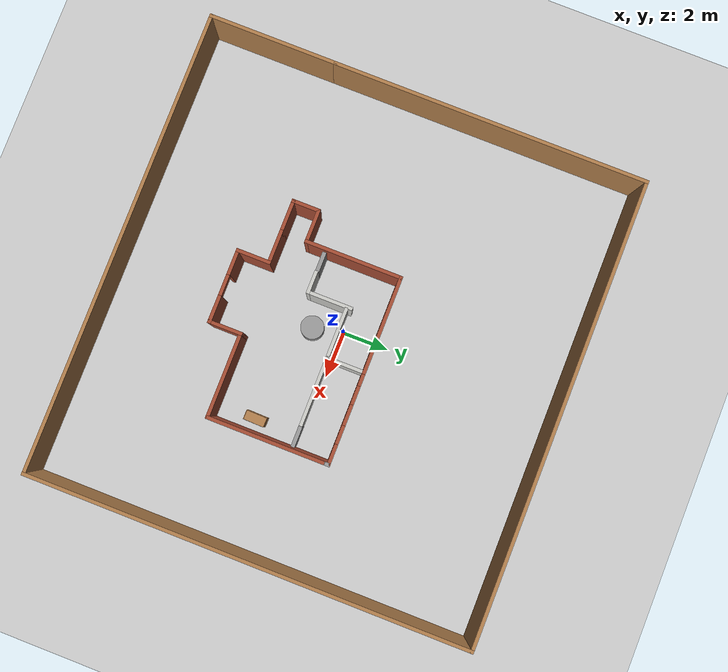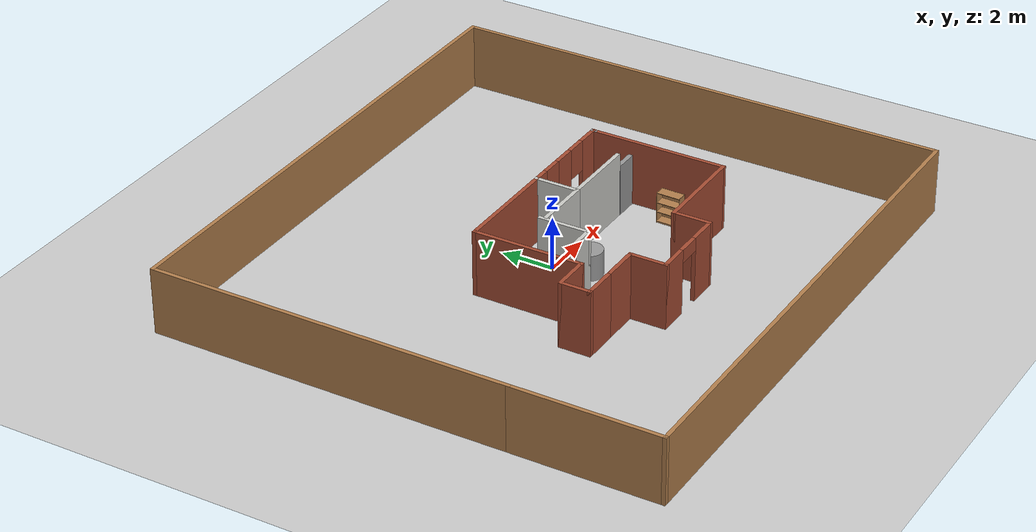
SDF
<sdf version="1.7">
 <world name="world">
  <light name="sun" type="directional">
   <pose>0 0 10 0 -0 0</pose>
   <diffuse>0.8 0.8 0.8 1</diffuse>
   <specular>0.2 0.2 0.2 1</specular>
   <attenuation>
    <range>1000</range>
    <constant>0.9</constant>
    <linear>0.01</linear>
    <quadratic>0.001</quadratic>
   </attenuation>
   <direction>-0.5 0.1 -0.9</direction>
   <spot><inner_angle>0</inner_angle><outer_angle>0</outer_angle><falloff>0</falloff></spot>
  </light>
  <model name="ground_plane">
   <static>1</static>
   <link name="link">
    <collision name="collision">
     <geometry><plane><normal>0 0 1</normal><size>100 100</size></plane></geometry>
     <surface>
      <contact><collide_bitmask>65535</collide_bitmask></contact>
      <friction><ode><mu>100</mu><mu2>50</mu2></ode></friction>
     </surface>
    </collision>
    <visual name="visual">
     <cast_shadows>0</cast_shadows>
     <geometry><plane><normal>0 0 1</normal><size>100 100</size></plane></geometry>
     <material>
      <script><uri>file://media/materials/scripts/gazebo.material</uri><name>Gazebo/Grey</name></script>
     </material>
    </visual>
   </link>
  </model>
  <gravity>0 0 -9.8</gravity>
  <magnetic_field>6e-06 2.3e-05 -4.2e-05</magnetic_field>
  <atmosphere type="adiabatic"/>
  <physics type="ode">
   <max_step_size>0.001</max_step_size>
   <real_time_factor>1</real_time_factor>
   <real_time_update_rate>1000</real_time_update_rate>
  </physics>
  <scene><ambient>0.4 0.4 0.4 1</ambient><background>0.7 0.7 0.7 1</background><shadows>1</shadows></scene>
  <spherical_coordinates>
   <surface_model>EARTH_WGS84</surface_model>
   <latitude_deg>0</latitude_deg>
   <longitude_deg>0</longitude_deg>
   <elevation>0</elevation>
   <heading_deg>0</heading_deg>
  </spherical_coordinates>
  <model name="my_world.world">
   <pose>0.6084 -1.8556 0 0 -0 0</pose>
   <link name="Door_1">
    <collision name="Door_1_Collision">
     <geometry><box><size>0.9 0.17 2</size></box></geometry>
     <pose>0 0 1 0 -0 0</pose>
    </collision>
    <visual name="Door_1_Visual">
     <pose>0 0 1 0 -0 0</pose>
     <geometry><box><size>0.9 0.17 2</size></box></geometry>
     <material>
      <script><uri>file://media/materials/scripts/gazebo.material</uri><name>Gazebo/Grey</name></script>
     </material>
    </visual>
    <pose>4.14027 1.67101 0 0 -0 0</pose>
   </link>
   <link name="Door_5">
    <collision name="Door_5_Collision">
     <geometry><box><size>0.9 0.17 2</size></box></geometry>
     <pose>0 0 1 0 -0 0</pose>
    </collision>
    <visual name="Door_5_Visual">
     <pose>0 0 1 0 -0 0</pose>
     <geometry><box><size>0.9 0.17 2</size></box></geometry>
     <material>
      <script><uri>file://media/materials/scripts/gazebo.material</uri><name>Gazebo/Grey</name></script>
     </material>
    </visual>
    <pose>-2.84578 -0.011754 0 0 -0 0</pose>
   </link>
   <link name="Wall_38">
    <collision name="Wall_38_Collision">
     <geometry><box><size>4.25 0.15 2.5</size></box></geometry>
     <pose>0 0 1.25 0 -0 0</pose>
    </collision>
    <visual name="Wall_38_Visual">
     <pose>0 0 1.25 0 -0 0</pose>
     <geometry><box><size>4.25 0.15 2.5</size></box></geometry>
     <material>
      <script><uri>file://media/materials/scripts/gazebo.material</uri><name>Gazebo/Bricks</name></script>
      <ambient>1 1 1 1</ambient>
     </material>
     <meta><layer>0</layer></meta>
    </visual>
    <pose>-1.3 3.275 0 0 -0 3.14159</pose>
   </link>
   <link name="Wall_39">
    <collision name="Wall_39_Collision">
     <geometry><box><size>4.25 0.15 2.5</size></box></geometry>
     <pose>0 0 1.25 0 -0 0</pose>
    </collision>
    <visual name="Wall_39_Visual">
     <pose>0 0 1.25 0 -0 0</pose>
     <geometry><box><size>4.25 0.15 2.5</size></box></geometry>
     <material>
      <script><uri>file://media/materials/scripts/gazebo.material</uri><name>Gazebo/Bricks</name></script>
      <ambient>1 1 1 1</ambient>
     </material>
     <meta><layer>0</layer></meta>
    </visual>
    <pose>-3.35 1.225 0 0 -0 -1.5708</pose>
   </link>
   <link name="Wall_40">
    <collision name="Wall_40_Collision">
     <geometry><box><size>1.5 0.15 2.5</size></box></geometry>
     <pose>0 0 1.25 0 -0 0</pose>
    </collision>
    <visual name="Wall_40_Visual">
     <pose>0 0 1.25 0 -0 0</pose>
     <geometry><box><size>1.5 0.15 2.5</size></box></geometry>
     <material>
      <script><uri>file://media/materials/scripts/gazebo.material</uri><name>Gazebo/Bricks</name></script>
      <ambient>1 1 1 1</ambient>
     </material>
     <meta><layer>0</layer></meta>
    </visual>
    <pose>-4.025 -0.825 0 0 -0 3.14159</pose>
   </link>
   <link name="Wall_41">
    <collision name="Wall_41_Collision">
     <geometry><box><size>1.25 0.15 2.5</size></box></geometry>
     <pose>0 0 1.25 0 -0 0</pose>
    </collision>
    <visual name="Wall_41_Visual">
     <pose>0 0 1.25 0 -0 0</pose>
     <geometry><box><size>1.25 0.15 2.5</size></box></geometry>
     <material>
      <script><uri>file://media/materials/scripts/gazebo.material</uri><name>Gazebo/Bricks</name></script>
      <ambient>1 1 1 1</ambient>
     </material>
     <meta><layer>0</layer></meta>
    </visual>
    <pose>-4.7 -1.375 0 0 -0 -1.5708</pose>
   </link>
   <link name="Wall_42">
    <collision name="Wall_42_Collision">
     <geometry><box><size>1.5 0.15 2.5</size></box></geometry>
     <pose>0 0 1.25 0 -0 0</pose>
    </collision>
    <visual name="Wall_42_Visual">
     <pose>0 0 1.25 0 -0 0</pose>
     <geometry><box><size>1.5 0.15 2.5</size></box></geometry>
     <material>
      <script><uri>file://media/materials/scripts/gazebo.material</uri><name>Gazebo/Bricks</name></script>
      <ambient>1 1 1 1</ambient>
     </material>
     <meta><layer>0</layer></meta>
    </visual>
    <pose>-4.025 -1.925 0 0 -0 0</pose>
   </link>
   <link name="Wall_43">
    <collision name="Wall_43_Collision">
     <geometry><box><size>1.5 0.15 2.5</size></box></geometry>
     <pose>0 0 1.25 0 -0 0</pose>
    </collision>
    <visual name="Wall_43_Visual">
     <pose>0 0 1.25 0 -0 0</pose>
     <geometry><box><size>1.5 0.15 2.5</size></box></geometry>
     <material>
      <script><uri>file://media/materials/scripts/gazebo.material</uri><name>Gazebo/Bricks</name></script>
      <ambient>1 1 1 1</ambient>
     </material>
     <meta><layer>0</layer></meta>
    </visual>
    <pose>-2.675 -1.925 0 0 -0 0</pose>
   </link>
   <link name="Wall_44">
    <collision name="Wall_44_Collision">
     <geometry><box><size>1.5 0.15 2.5</size></box></geometry>
     <pose>0 0 1.25 0 -0 0</pose>
    </collision>
    <visual name="Wall_44_Visual">
     <pose>0 0 1.25 0 -0 0</pose>
     <geometry><box><size>1.5 0.15 2.5</size></box></geometry>
     <material>
      <script><uri>file://media/materials/scripts/gazebo.material</uri><name>Gazebo/Bricks</name></script>
      <ambient>1 1 1 1</ambient>
     </material>
     <meta><layer>0</layer></meta>
    </visual>
    <pose>-2 -2.6 0 0 -0 -1.5708</pose>
   </link>
   <link name="Wall_45">
    <pose>-0.45 -3.275 0 0 -0 0</pose>
    <visual name="Wall_45_Visual_0">
     <pose>-1.05573 0 1.25 0 -0 0</pose>
     <geometry><box><size>1.13854 0.15 2.5</size></box></geometry>
     <material>
      <script><uri>file://media/materials/scripts/gazebo.material</uri><name>Gazebo/Bricks</name></script>
      <ambient>1 1 1 1</ambient>
     </material>
     <meta><layer>0</layer></meta>
    </visual>
    <collision name="Wall_45_Collision_0">
     <geometry><box><size>1.13854 0.15 2.5</size></box></geometry>
     <pose>-1.05573 0 1.25 0 -0 0</pose>
    </collision>
    <visual name="Wall_45_Visual_1">
     <pose>1.01927 0 1.25 0 -0 0</pose>
     <geometry><box><size>1.21146 0.15 2.5</size></box></geometry>
     <material>
      <script><uri>file://media/materials/scripts/gazebo.material</uri><name>Gazebo/Bricks</name></script>
      <ambient>1 1 1 1</ambient>
     </material>
     <meta><layer>0</layer></meta>
    </visual>
    <collision name="Wall_45_Collision_1">
     <geometry><box><size>1.21146 0.15 2.5</size></box></geometry>
     <pose>1.01927 0 1.25 0 -0 0</pose>
    </collision>
    <visual name="Wall_45_Visual_2">
     <pose>-0.036456 0 2.25 0 -0 0</pose>
     <geometry><box><size>0.9 0.15 0.5</size></box></geometry>
     <material>
      <script><uri>file://media/materials/scripts/gazebo.material</uri><name>Gazebo/Bricks</name></script>
      <ambient>1 1 1 1</ambient>
     </material>
     <meta><layer>0</layer></meta>
    </visual>
    <collision name="Wall_45_Collision_2">
     <geometry><box><size>0.9 0.15 0.5</size></box></geometry>
     <pose>-0.036456 0 2.25 0 -0 0</pose>
    </collision>
   </link>
   <link name="Wall_46">
    <collision name="Wall_46_Collision">
     <geometry><box><size>1.5 0.15 2.5</size></box></geometry>
     <pose>0 0 1.25 0 -0 0</pose>
    </collision>
    <visual name="Wall_46_Visual">
     <pose>0 0 1.25 0 -0 0</pose>
     <geometry><box><size>1.5 0.15 2.5</size></box></geometry>
     <material>
      <script><uri>file://media/materials/scripts/gazebo.material</uri><name>Gazebo/Bricks</name></script>
      <ambient>1 1 1 1</ambient>
     </material>
     <meta><layer>0</layer></meta>
    </visual>
    <pose>1.1 -2.6 0 0 -0 1.5708</pose>
   </link>
   <link name="Wall_47">
    <collision name="Wall_47_Collision">
     <geometry><box><size>3.75 0.15 2.5</size></box></geometry>
     <pose>0 0 1.25 0 -0 0</pose>
    </collision>
    <visual name="Wall_47_Visual">
     <pose>0 0 1.25 0 -0 0</pose>
     <geometry><box><size>3.75 0.15 2.5</size></box></geometry>
     <material>
      <script><uri>file://media/materials/scripts/gazebo.material</uri><name>Gazebo/Bricks</name></script>
      <ambient>1 1 1 1</ambient>
     </material>
     <meta><layer>0</layer></meta>
    </visual>
    <pose>2.9 -1.925 0 0 -0 0</pose>
   </link>
   <link name="Wall_48">
    <collision name="Wall_48_Collision">
     <geometry><box><size>5.25 0.15 2.5</size></box></geometry>
     <pose>0 0 1.25 0 -0 0</pose>
    </collision>
    <visual name="Wall_48_Visual">
     <pose>0 0 1.25 0 -0 0</pose>
     <geometry><box><size>5.25 0.15 2.5</size></box></geometry>
     <material>
      <script><uri>file://media/materials/scripts/gazebo.material</uri><name>Gazebo/Bricks</name></script>
      <ambient>1 1 1 1</ambient>
     </material>
     <meta><layer>0</layer></meta>
    </visual>
    <pose>4.7 0.625 0 0 -0 1.5708</pose>
   </link>
   <link name="Wall_49">
    <collision name="Wall_49_Collision">
     <geometry><box><size>0.15 0.15 2.5</size></box></geometry>
     <pose>0 0 1.25 0 -0 0</pose>
    </collision>
    <visual name="Wall_49_Visual">
     <pose>0 0 1.25 0 -0 0</pose>
     <geometry><box><size>0.15 0.15 2.5</size></box></geometry>
     <material>
      <script><uri>file://media/materials/scripts/gazebo.material</uri><name>Gazebo/Grey</name></script>
      <ambient>1 1 1 1</ambient>
     </material>
     <meta><layer>0</layer></meta>
    </visual>
    <pose>4.7 3.175 0 0 -0 0</pose>
   </link>
   <link name="Wall_50">
    <collision name="Wall_50_Collision">
     <geometry><box><size>0.25 0.15 2.5</size></box></geometry>
     <pose>0 0 1.25 0 -0 0</pose>
    </collision>
    <visual name="Wall_50_Visual">
     <pose>0 0 1.25 0 -0 0</pose>
     <geometry><box><size>0.25 0.15 2.5</size></box></geometry>
     <material>
      <script><uri>file://media/materials/scripts/gazebo.material</uri><name>Gazebo/Grey</name></script>
      <ambient>1 1 1 1</ambient>
     </material>
     <meta><layer>0</layer></meta>
    </visual>
    <pose>4.7 3.225 0 0 -0 1.5708</pose>
   </link>
   <link name="Wall_51">
    <pose>2.725 3.275 0 0 -0 3.14159</pose>
    <visual name="Wall_51_Visual_0">
     <pose>-1.57381 0 1.25 0 -0 0</pose>
     <geometry><box><size>0.952383 0.15 2.5</size></box></geometry>
     <material>
      <script><uri>file://media/materials/scripts/gazebo.material</uri><name>Gazebo/Bricks</name></script>
      <ambient>1 1 1 1</ambient>
     </material>
     <meta><layer>0</layer></meta>
    </visual>
    <collision name="Wall_51_Collision_0">
     <geometry><box><size>0.952383 0.15 2.5</size></box></geometry>
     <pose>-1.57381 0 1.25 0 -0 0</pose>
    </collision>
    <visual name="Wall_51_Visual_1">
     <pose>0.476192 0 0.25 0 -0 0</pose>
     <geometry><box><size>3.14762 0.15 0.5</size></box></geometry>
     <material>
      <script><uri>file://media/materials/scripts/gazebo.material</uri><name>Gazebo/Bricks</name></script>
      <ambient>1 1 1 1</ambient>
     </material>
     <meta><layer>0</layer></meta>
    </visual>
    <collision name="Wall_51_Collision_1">
     <geometry><box><size>3.14762 0.15 0.5</size></box></geometry>
     <pose>0.476192 0 0.25 0 -0 0</pose>
    </collision>
    <visual name="Wall_51_Visual_2">
     <pose>0.146651 0 1.5 0 -0 0</pose>
     <geometry><box><size>0.888534 0.15 2</size></box></geometry>
     <material>
      <script><uri>file://media/materials/scripts/gazebo.material</uri><name>Gazebo/Bricks</name></script>
      <ambient>1 1 1 1</ambient>
     </material>
     <meta><layer>0</layer></meta>
    </visual>
    <collision name="Wall_51_Collision_2">
     <geometry><box><size>0.888534 0.15 2</size></box></geometry>
     <pose>0.146651 0 1.5 0 -0 0</pose>
    </collision>
    <visual name="Wall_51_Visual_3">
     <pose>1.72046 0 1.5 0 -0 0</pose>
     <geometry><box><size>0.659082 0.15 2</size></box></geometry>
     <material>
      <script><uri>file://media/materials/scripts/gazebo.material</uri><name>Gazebo/Bricks</name></script>
      <ambient>1 1 1 1</ambient>
     </material>
     <meta><layer>0</layer></meta>
    </visual>
    <collision name="Wall_51_Collision_3">
     <geometry><box><size>0.659082 0.15 2</size></box></geometry>
     <pose>1.72046 0 1.5 0 -0 0</pose>
    </collision>
    <visual name="Wall_51_Visual_4">
     <pose>-0.697617 0 1.9 0 -0 0</pose>
     <geometry><box><size>0.8 0.15 1.2</size></box></geometry>
     <material>
      <script><uri>file://media/materials/scripts/gazebo.material</uri><name>Gazebo/Bricks</name></script>
      <ambient>1 1 1 1</ambient>
     </material>
     <meta><layer>0</layer></meta>
    </visual>
    <collision name="Wall_51_Collision_4">
     <geometry><box><size>0.8 0.15 1.2</size></box></geometry>
     <pose>-0.697617 0 1.9 0 -0 0</pose>
    </collision>
    <visual name="Wall_51_Visual_5">
     <pose>0.990918 0 1.9 0 -0 0</pose>
     <geometry><box><size>0.8 0.15 1.2</size></box></geometry>
     <material>
      <script><uri>file://media/materials/scripts/gazebo.material</uri><name>Gazebo/Bricks</name></script>
      <ambient>1 1 1 1</ambient>
     </material>
     <meta><layer>0</layer></meta>
    </visual>
    <collision name="Wall_51_Collision_5">
     <geometry><box><size>0.8 0.15 1.2</size></box></geometry>
     <pose>0.990918 0 1.9 0 -0 0</pose>
    </collision>
   </link>
   <link name="Wall_52">
    <collision name="Wall_52_Collision">
     <geometry><box><size>1.75 0.15 2.5</size></box></geometry>
     <pose>0 0 1.25 0 -0 0</pose>
    </collision>
    <visual name="Wall_52_Visual">
     <pose>0 0 1.25 0 -0 0</pose>
     <geometry><box><size>1.75 0.15 2.5</size></box></geometry>
     <material>
      <script><uri>file://media/materials/scripts/gazebo.material</uri><name>Gazebo/CeilingTiled</name></script>
      <ambient>1 1 1 1</ambient>
     </material>
     <meta><layer>0</layer></meta>
    </visual>
    <pose>0.75 2.475 0 0 -0 -1.5708</pose>
   </link>
   <link name="Wall_53">
    <collision name="Wall_53_Collision">
     <geometry><box><size>3 0.15 2.5</size></box></geometry>
     <pose>0 0 1.25 0 -0 0</pose>
    </collision>
    <visual name="Wall_53_Visual">
     <pose>0 0 1.25 0 -0 0</pose>
     <geometry><box><size>3 0.15 2.5</size></box></geometry>
     <material>
      <script><uri>file://media/materials/scripts/gazebo.material</uri><name>Gazebo/CeilingTiled</name></script>
      <ambient>1 1 1 1</ambient>
     </material>
     <meta><layer>0</layer></meta>
    </visual>
    <pose>2.175 1.675 0 0 -0 0</pose>
   </link>
   <link name="Wall_56">
    <collision name="Wall_56_Collision">
     <geometry><box><size>2 0.15 2.5</size></box></geometry>
     <pose>0 0 1.25 0 -0 0</pose>
    </collision>
    <visual name="Wall_56_Visual">
     <pose>0 0 1.25 0 -0 0</pose>
     <geometry><box><size>2 0.15 2.5</size></box></geometry>
     <material>
      <script><uri>file://media/materials/scripts/gazebo.material</uri><name>Gazebo/CeilingTiled</name></script>
      <ambient>1 1 1 1</ambient>
     </material>
     <meta><layer>0</layer></meta>
    </visual>
    <pose>-1.45839 0.913694 0 0 -0 -1.5708</pose>
   </link>
   <link name="Wall_57">
    <collision name="Wall_57_Collision">
     <geometry><box><size>1 0.15 2.5</size></box></geometry>
     <pose>0 0 1.25 0 -0 0</pose>
    </collision>
    <visual name="Wall_57_Visual">
     <pose>0 0 1.25 0 -0 0</pose>
     <geometry><box><size>1 0.15 2.5</size></box></geometry>
     <material>
      <script><uri>file://media/materials/scripts/gazebo.material</uri><name>Gazebo/CeilingTiled</name></script>
      <ambient>1 1 1 1</ambient>
     </material>
     <meta><layer>0</layer></meta>
    </visual>
    <pose>-1.88339 -0.011306 0 0 -0 3.14159</pose>
   </link>
   <link name="Wall_60">
    <collision name="Wall_60_Collision">
     <geometry><box><size>2.25 0.15 2.5</size></box></geometry>
     <pose>0 0 1.25 0 -0 0</pose>
    </collision>
    <visual name="Wall_60_Visual">
     <pose>0 0 1.25 0 -0 0</pose>
     <geometry><box><size>2.25 0.15 2.5</size></box></geometry>
     <material>
      <script><uri>file://media/materials/scripts/gazebo.material</uri><name>Gazebo/CeilingTiled</name></script>
      <ambient>1 1 1 1</ambient>
     </material>
     <meta><layer>0</layer></meta>
    </visual>
    <pose>-0.3 1.675 0 0 -0 3.14159</pose>
   </link>
   <static>1</static>
  </model>
  <model name="bookshelf">
   <static>1</static>
   <link name="link">
    <inertial><mass>1</mass></inertial>
    <collision name="back">
     <pose>0 0.005 0.6 0 -0 0</pose>
     <geometry><box><size>0.9 0.01 1.2</size></box></geometry>
    </collision>
    <visual name="visual1">
     <pose>0 0.005 0.6 0 -0 0</pose>
     <geometry><box><size>0.9 0.01 1.2</size></box></geometry>
     <material>
      <script><uri>file://media/materials/scripts/gazebo.material</uri><name>Gazebo/Wood</name></script>
     </material>
    </visual>
    <collision name="left_side">
     <pose>0.45 -0.195 0.6 0 -0 0</pose>
     <geometry><box><size>0.02 0.4 1.2</size></box></geometry>
    </collision>
    <visual name="visual2">
     <pose>0.45 -0.195 0.6 0 -0 0</pose>
     <geometry><box><size>0.02 0.4 1.2</size></box></geometry>
     <material>
      <script><uri>file://media/materials/scripts/gazebo.material</uri><name>Gazebo/Wood</name></script>
     </material>
    </visual>
    <collision name="right_side">
     <pose>-0.45 -0.195 0.6 0 -0 0</pose>
     <geometry><box><size>0.02 0.4 1.2</size></box></geometry>
    </collision>
    <visual name="visual3">
     <pose>-0.45 -0.195 0.6 0 -0 0</pose>
     <geometry><box><size>0.02 0.4 1.2</size></box></geometry>
     <material>
      <script><uri>file://media/materials/scripts/gazebo.material</uri><name>Gazebo/Wood</name></script>
     </material>
    </visual>
    <collision name="bottom">
     <pose>0 -0.195 0.03 0 -0 0</pose>
     <geometry><box><size>0.88 0.4 0.06</size></box></geometry>
    </collision>
    <visual name="visual4">
     <pose>0 -0.195 0.03 0 -0 0</pose>
     <geometry><box><size>0.88 0.4 0.06</size></box></geometry>
     <material>
      <script><uri>file://media/materials/scripts/gazebo.material</uri><name>Gazebo/Wood</name></script>
     </material>
    </visual>
    <collision name="top">
     <pose>0 -0.195 1.19 0 -0 0</pose>
     <geometry><box><size>0.88 0.4 0.02</size></box></geometry>
    </collision>
    <visual name="visual5">
     <pose>0 -0.195 1.19 0 -0 0</pose>
     <geometry><box><size>0.88 0.4 0.02</size></box></geometry>
     <material>
      <script><uri>file://media/materials/scripts/gazebo.material</uri><name>Gazebo/Wood</name></script>
     </material>
    </visual>
    <collision name="low_shelf">
     <pose>0 -0.195 0.43 0 -0 0</pose>
     <geometry><box><size>0.88 0.4 0.02</size></box></geometry>
    </collision>
    <visual name="visual6">
     <pose>0 -0.195 0.43 0 -0 0</pose>
     <geometry><box><size>0.88 0.4 0.02</size></box></geometry>
     <material>
      <script><uri>file://media/materials/scripts/gazebo.material</uri><name>Gazebo/Wood</name></script>
     </material>
    </visual>
    <collision name="high_shelf">
     <pose>0 -0.195 0.8 0 -0 0</pose>
     <geometry><box><size>0.88 0.4 0.02</size></box></geometry>
    </collision>
    <visual name="visual7">
     <pose>0 -0.195 0.8 0 -0 0</pose>
     <geometry><box><size>0.88 0.4 0.02</size></box></geometry>
     <material>
      <script><uri>file://media/materials/scripts/gazebo.material</uri><name>Gazebo/Wood</name></script>
     </material>
    </visual>
   </link>
   <pose>4.90181 -2.07415 0 0 0 -1.5904</pose>
  </model>
  <model name="unit_cylinder">
   <pose>0.329489 -1.26685 0.499992 -3e-06 4e-06 0</pose>
   <link name="link">
    <inertial>
     <mass>1</mass>
     <inertia><ixx>0.145833</ixx><ixy>0</ixy><ixz>0</ixz><iyy>0.145833</iyy><iyz>0</iyz><izz>0.125</izz></inertia>
    </inertial>
    <collision name="collision">
     <geometry><cylinder><radius>0.5</radius><length>1</length></cylinder></geometry>
    </collision>
    <visual name="visual">
     <geometry><cylinder><radius>0.5</radius><length>1</length></cylinder></geometry>
     <material>
      <script><name>Gazebo/Grey</name><uri>file://media/materials/scripts/gazebo.material</uri></script>
     </material>
    </visual>
   </link>
  </model>
  <model name="My_worlds_outline">
   <pose>0.0002 -0.2154 0 0 -0 0</pose>
   <link name="Wall_63">
    <collision name="Wall_63_Collision">
     <geometry><box><size>13.75 0.15 2.5</size></box></geometry>
     <pose>0 0 1.25 0 -0 0</pose>
    </collision>
    <visual name="Wall_63_Visual">
     <pose>0 0 1.25 0 -0 0</pose>
     <geometry><box><size>13.75 0.15 2.5</size></box></geometry>
     <material>
      <script><uri>file://media/materials/scripts/gazebo.material</uri><name>Gazebo/Wood</name></script>
      <ambient>1 1 1 1</ambient>
     </material>
     <meta><layer>0</layer></meta>
    </visual>
    <pose>-10.05 2.75 0 0 -0 1.5708</pose>
   </link>
   <link name="Wall_64">
    <collision name="Wall_64_Collision">
     <geometry><box><size>20.25 0.15 2.5</size></box></geometry>
     <pose>0 0 1.25 0 -0 0</pose>
    </collision>
    <visual name="Wall_64_Visual">
     <pose>0 0 1.25 0 -0 0</pose>
     <geometry><box><size>20.25 0.15 2.5</size></box></geometry>
     <material>
      <script><uri>file://media/materials/scripts/gazebo.material</uri><name>Gazebo/Wood</name></script>
      <ambient>1 1 1 1</ambient>
     </material>
     <meta><layer>0</layer></meta>
    </visual>
    <pose>-0 9.55 0 0 -0 0</pose>
   </link>
   <link name="Wall_65">
    <collision name="Wall_65_Collision">
     <geometry><box><size>19.25 0.15 2.5</size></box></geometry>
     <pose>0 0 1.25 0 -0 0</pose>
    </collision>
    <visual name="Wall_65_Visual">
     <pose>0 0 1.25 0 -0 0</pose>
     <geometry><box><size>19.25 0.15 2.5</size></box></geometry>
     <material>
      <script><uri>file://media/materials/scripts/gazebo.material</uri><name>Gazebo/Wood</name></script>
      <ambient>1 1 1 1</ambient>
     </material>
     <meta><layer>0</layer></meta>
    </visual>
    <pose>10.05 0 0 0 -0 -1.5708</pose>
   </link>
   <link name="Wall_66">
    <collision name="Wall_66_Collision">
     <geometry><box><size>20.25 0.15 2.5</size></box></geometry>
     <pose>0 0 1.25 0 -0 0</pose>
    </collision>
    <visual name="Wall_66_Visual">
     <pose>0 0 1.25 0 -0 0</pose>
     <geometry><box><size>20.25 0.15 2.5</size></box></geometry>
     <material>
      <script><uri>file://media/materials/scripts/gazebo.material</uri><name>Gazebo/Wood</name></script>
      <ambient>1 1 1 1</ambient>
     </material>
     <meta><layer>0</layer></meta>
    </visual>
    <pose>-0 -9.55 0 0 -0 3.14159</pose>
   </link>
   <link name="Wall_67">
    <collision name="Wall_67_Collision">
     <geometry><box><size>5.65 0.15 2.5</size></box></geometry>
     <pose>0 0 1.25 0 -0 0</pose>
    </collision>
    <visual name="Wall_67_Visual">
     <pose>0 0 1.25 0 -0 0</pose>
     <geometry><box><size>5.65 0.15 2.5</size></box></geometry>
     <material>
      <script><uri>file://media/materials/scripts/gazebo.material</uri><name>Gazebo/Wood</name></script>
      <ambient>1 1 1 1</ambient>
     </material>
     <meta><layer>0</layer></meta>
    </visual>
    <pose>-10.05 -6.8 0 0 -0 1.5708</pose>
   </link>
   <static>1</static>
  </model>
  <plugin name="collision_map_creator" filename="libcollision_map_creator.so"/>
 </world>
</sdf>
